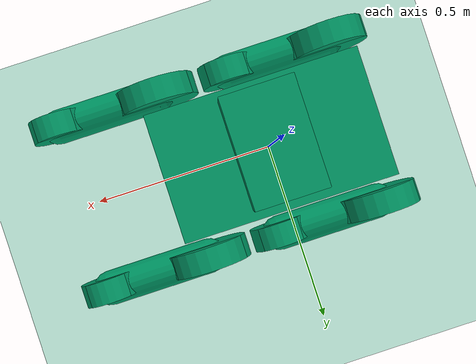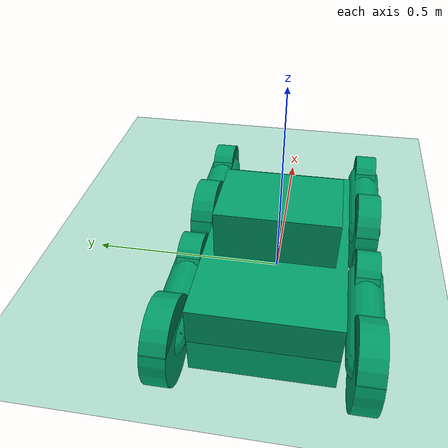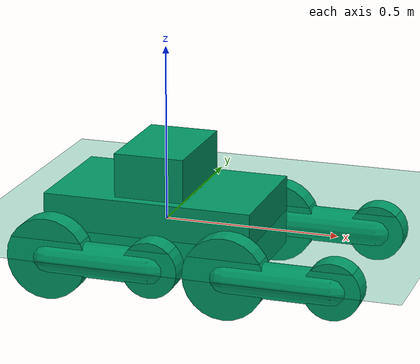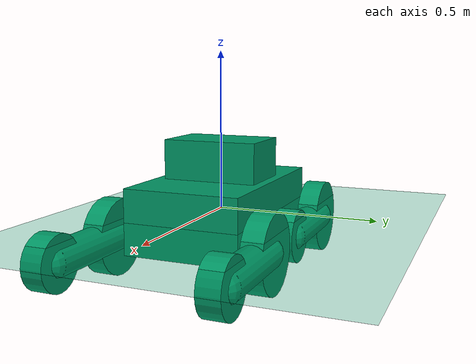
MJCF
<mujoco model="marv">
  <compiler angle="radian" coordinate="local" inertiafromgeom="true" meshdir="../meshes"/>
  <option integrator="RK4" timestep="0.01" o_solimp="0 0.95 0.001 0.5 2" o_solref="0.02 1"/>
  <size nconmax="300"/>

  <default>
    <joint armature="0.5" damping="3" limited="true"/>
    <geom conaffinity="0" condim="3" density="5.0" friction="1 0.5 0.5" margin="0.001" rgba="0.0 0.6 0.4 1"/>
  </default>

  <asset>
    <texture type="skybox" builtin="gradient" width="100" height="100" rgb1="1 1 1" rgb2="0 0 0" />
    <texture name="texplane" type="2d" builtin="checker" rgb1="0.26 0.12 0.36" rgb2="0.23 0.09 0.33" width="512" height="512" mark="cross" markrgb=".8 .8 .8"/>
    <texture name="texgeom" type="cube" builtin="flat" mark="cross" width="127" height="1278" rgb1="0.8 0.6 0.4" rgb2="0.8 0.6 0.4" markrgb="1 1 1" random="0.01"/>
    <material name="matplane" reflectance="0.3" texture="texplane" texrepeat="1 1" texuniform="true"/>
    <material name='geom' texture="texgeom" texuniform="true" />
    <mesh name="flipper_mesh" file="flipper.stl"/>
    <mesh name="chassis_mesh" file="chassis.stl"/>
  </asset>

  <worldbody>
    <light cutoff="100" diffuse="1 1 1" dir="-0 0 -1.3" directional="true" exponent="1" pos="0 0 1.3" specular=".1 .1 .1"/>
    <geom conaffinity="1" condim="3" material="matplane" name="floor" pos="0 0 0" size="40 40 40" type="plane"/>
    <body name="torso" pos="0 0 0">
      <camera name="track" mode="track" pos="1 -7 3.2" xyaxes="1 0 0 0 0.5 1"/>
      <geom name="torso" pos="0 0 0" size="0.3 0.18 0.1" mass="1" type="box"/>
      <geom name="torso_upper" pos="0 0 0.15" size="0.1 0.15 0.075" mass="20" type="box"/>
      <geom name="batteries" pos="0 0 0.05" size="0.05 0.05 0.01" mass="10" type="box"/>
      <geom name="tail" pos="-0.256 0 0" size="0.03" mass="0.1" type="sphere"/>
      <joint armature="0" damping="0" limited="false" margin="0.01" name="root" pos="0 0 0" type="free"/>

      <!-- FL flipper -->
      <body name="front_left_flipper" pos="0.256 0.245 -0.0565">
	  <geom name="front_left_flipper" fromto="0.0 0.0 0.0 0.3 0.0 0.0" size="0.05" mass="1" type="capsule"/>
        <joint axis="0 1 0" name="front_left_flipper" pos="0.0 0.0 0.0" range="-3.1415 3.1415" damping="25.0" armature= "0.1" type="hinge"/>
          <body pos="0 0 0">
            <joint axis="0 1 0" name="rear_wheel_fl" pos="0.0 0.0 0.0" limited="false" type="hinge"/>
            <geom fromto="0.0 -0.0325 0.0 0.0 0.0325 0.0" name="rear_wheel_fl" size="0.1165" mass="0.5" type="cylinder"/>
          </body>
	    <body pos="0.3 0 0">
            <joint axis="0 1 0" name="front_wheel_fl" pos="0.0 0.0 0.0" limited="false" type="hinge"/>
            <geom fromto="0.0 -0.0325 0.0 0.0 0.0325 0.0" name="front_wheel_fl" size="0.08"  mass="0.5" type="cylinder"/>
        </body>
      </body>

      <!-- FR flipper -->
      <body name="front_right_flipper" pos="0.256 -0.245 -0.0565">
	  <geom name="front_right_flipper" fromto="0.0 0.0 0.0 0.3 0.0 0.0" size="0.05" mass="1" type="capsule"/>
        <joint axis="0 1 0" name="front_right_flipper" pos="0.0 0.0 0.0" range="-3.1415 3.1415" damping="25.0" armature= "0.1" type="hinge"/>
          <body pos="0 0 0">
            <joint axis="0 1 0" name="rear_wheel_fr" pos="0.0 0.0 0.0" limited="false" type="hinge"/>
            <geom fromto="0.0 -0.0325 0.0 0.0 0.0325 0.0" name="rear_wheel_fr" size="0.1165" mass="0.5" type="cylinder"/>
          </body>
	    <body pos="0.3 0 0">
            <joint axis="0 1 0" name="front_wheel_fr" pos="0.0 0.0 0.0" limited="false" type="hinge"/>
            <geom fromto="0.0 -0.0325 0.0 0.0 0.0325 0.0" name="front_wheel_fr" size="0.08"  mass="0.5" type="cylinder"/>
        </body>
      </body>

      <!-- RL flipper -->
      <body name="rear_left_flipper" pos="-0.256 0.245 -0.0565">
	  <geom name="rear_left_flipper" fromto="0.0 0.0 0.0 0.3 0.0 0.0" size="0.05" mass="1" type="capsule"/>
        <joint axis="0 1 0" name="rear_left_flipper" pos="0.0 0.0 0.0" range="-0.2 4" damping="25.0" armature= "0.1" type="hinge"/>
          <body pos="0 0 0">
            <joint axis="0 1 0" name="rear_wheel_rl" pos="0.0 0.0 0.0" limited="false" type="hinge"/>
            <geom fromto="0.0 -0.0325 0.0 0.0 0.0325 0.0" name="rear_wheel_rl" size="0.1165" mass="0.5" type="cylinder"/>
          </body>
	    <body pos="0.3 0 0">
            <joint axis="0 1 0" name="front_wheel_rl" pos="0.0 0.0 0.0" limited="false" type="hinge"/>
            <geom fromto="0.0 -0.0325 0.0 0.0 0.0325 0.0" name="front_wheel_rl" size="0.08" mass="0.5"  type="cylinder"/>
        </body>
      </body>

      <!-- RR flipper -->
      <body name="rear_right_flipper" pos="-0.256 -0.245 -0.0565">
	  <geom name="rear_right_flipper" fromto="0.0 0.0 0.0 0.3 0.0 0.0" size="0.05" mass="1" type="capsule"/>
        <joint axis="0 1 0" name="rear_right_flipper" pos="0.0 0.0 0.0" range="-0.2 4"  damping="25.0" armature= "0.1" type="hinge"/>
          <body pos="0 0 0">
            <joint axis="0 1 0" name="rear_wheel_rr" pos="0.0 0.0 0.0" limited="false" type="hinge"/>
            <geom fromto="0.0 -0.0325 0.0 0.0 0.0325 0.0" name="rear_wheel_rr" size="0.1165" mass="0.5" type="cylinder"/>
          </body>
	    <body pos="0.3 0 0">
            <joint axis="0 1 0" name="front_wheel_rr" pos="0.0 0.0 0.0" limited="false" type="hinge"/>
            <geom fromto="0.0 -0.0325 0.0 0.0 0.0325 0.0" name="front_wheel_rr" size="0.08" mass="0.5" type="cylinder"/>
        </body>
      </body>

    </body>
  </worldbody>
  <actuator>
    <position joint="front_left_flipper" kp="40" forcelimited="true" forcerange="-300 300"/>
    <position joint="front_right_flipper" kp="40" forcelimited="true" forcerange="-300 300"/>
    <position joint="rear_left_flipper" kp="40" forcelimited="true" forcerange="-300 300"/>
    <position joint="rear_right_flipper" kp="40" forcelimited="true" forcerange="-300 300"/>
    <velocity joint="rear_wheel_fl" kv="2000" gear="0.05" forcerange="-500 500"/>
    <velocity joint="rear_wheel_fr" kv="2000" gear="0.05" forcerange="-500 500"/>
    <velocity joint="rear_wheel_rl" kv="2000" gear="0.05" forcerange="-500 500"/>
    <velocity joint="rear_wheel_rr" kv="2000" gear="0.05" forcerange="-500 500"/>
    <velocity joint="front_wheel_fl" kv="2000" gear="0.05" forcerange="-500 500"/>
    <velocity joint="front_wheel_fr" kv="2000" gear="0.05" forcerange="-500 500"/>
    <velocity joint="front_wheel_rl" kv="2000" gear="0.05" forcerange="-500 500"/>
    <velocity joint="front_wheel_rr" kv="2000" gear="0.05" forcerange="-500 500"/>
  </actuator>
</mujoco>
